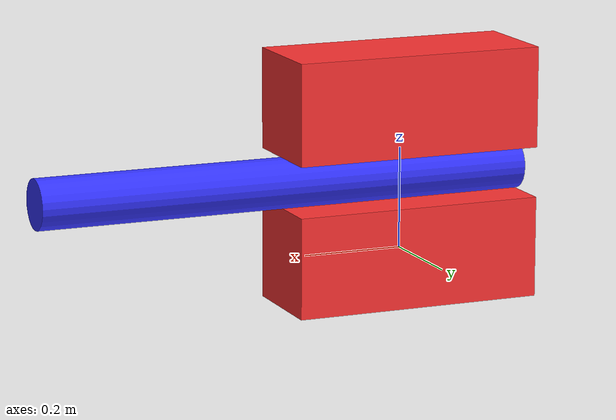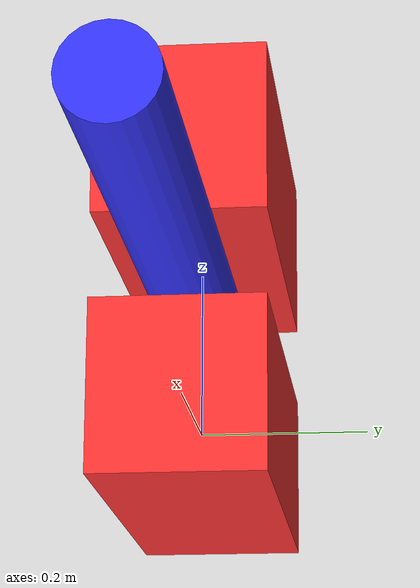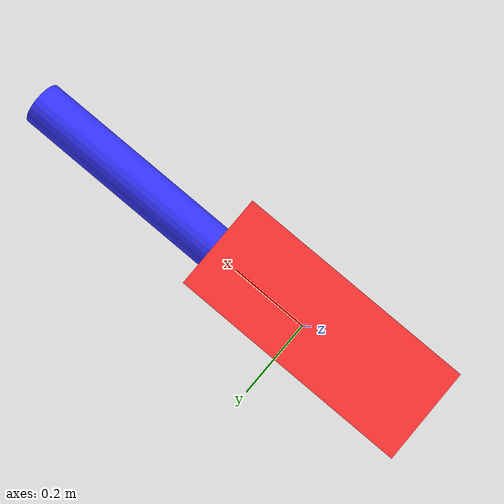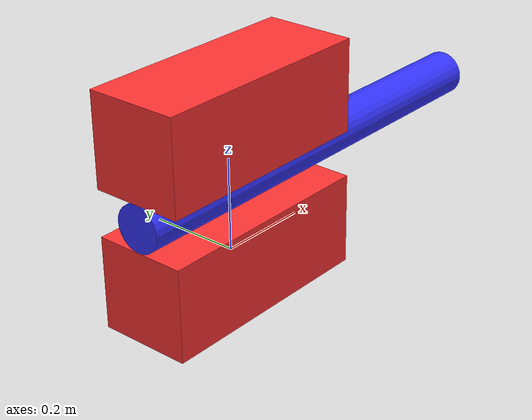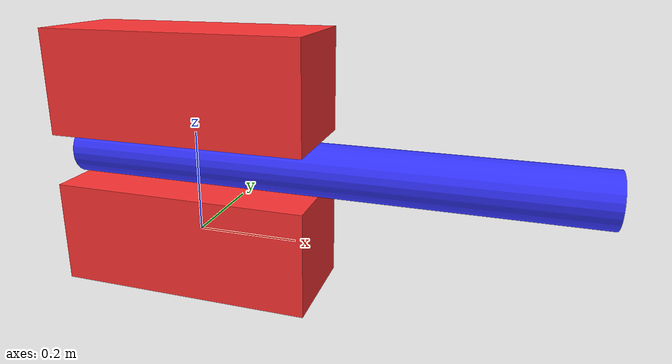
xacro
<?xml version='1.0' encoding='utf-8'?>
<robot xmlns:xacro="http://www.ros.org/wiki/xacro" name="example">
    <!-- path to package -->
    <xacro:property name="package_name" value="balegce"/>

    <xacro:property name="PI" value="3.141592653589793"/>

    <!-- Add manipulator -->
    <xacro:include filename="$(find ${package_name})/robot/visual/functions.xacro"/>

    <!-- 1 DOF prismatic -->

    <link name="link_0">
        <xacro:brickSolid mass = "1.0" origin="0 0 0" rpy="0 0 0" x="0.5" y="0.2" z="0.2" link_id="0"/>
    </link>

    <xacro:prismaticJoint id="0" curr_link="link_0" next_link="link_1" origin="0.25 0 0.15" rpy="0 ${PI/2} 0"/>
    <link name="link_1">
        <xacro:cylinderSolid mass = "1.0" origin="0 0 0" rpy="0 0 0" R="0.05" l="1.0" link_id="1"/>
    </link>

    <xacro:rigidTransform curr_link="link_0" next_link="link_2" origin="0 0 0.30" rpy="0 0 0"/>
    <link name="link_2">
        <xacro:brickSolid mass = "1.0" origin="0 0 0" rpy="0 0 0" x="0.5" y="0.2" z="0.2" link_id="2"/>
    </link>

</robot>

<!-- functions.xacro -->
<robot xmlns:xacro="http://www.ros.org/wiki/xacro">
    <xacro:macro name="worldPlan" params="mass origin rpy x y z">
        <visual>
            <origin xyz="${origin}" rpy="${rpy}"/>
            <geometry>
                <box size="${x} ${y} ${z}"/>
            </geometry>
            <material name="worldPlan">
                <color rgba="0.2 1 0.2 1"/>
            </material>
        </visual>
        <inertial>
            <origin xyz="${origin}"/>
            <mass value= "${mass}"/>
            <inertia ixx="${(1/12) * mass * (y*y+z*z)}"
                     ixy="0.0"
                     ixz="0.0"
                     iyy="${(1/12) * mass * (x*x+z*z)}"
                     iyz="0.0"
                     izz="${(1/12) * mass * (x*x+y*y)}" />
        </inertial>
        <collision>
            <origin xyz="${origin}" rpy="${rpy}"/>
            <geometry>
                <box size="${x} ${y} ${z}"/>
            </geometry>
        </collision>
    </xacro:macro>

    <xacro:macro name="base_visual" params="mass origin rpy R l">
        <visual>
            <origin xyz="${origin}" rpy="${rpy}"/>
            <geometry>
                <cylinder radius="${R}" length="${l}"/>
            </geometry>
            <material name="based_color">
                <color rgba="1 0.2 0.2 1"/>
            </material>
        </visual>
        <inertial>
            <origin xyz="${origin}"/>
            <mass value="${mass}" />
            <inertia ixx="${(1/12) * mass * (3*R*R + l*l)}"
                     ixy="0.0"
                     ixz="0.0"
                     iyy="${(1/12) * mass * (3*R*R + l*l)}"
                     iyz="0.0"
                     izz="${(1/2) * mass * (R*R)}" />
        </inertial>
        <collision>
            <origin xyz="${origin}" rpy="${rpy}"/>
            <geometry>
                <cylinder radius="${R}" length="${l}"/>
            </geometry>
        </collision>
    </xacro:macro>

    <xacro:macro name="cylinderSolid" params="mass origin rpy R l link_id">
        <visual>
            <origin xyz="${origin}" rpy="${rpy}"/>
            <geometry>
                <cylinder radius="${R}" length="${l}"/>
            </geometry>
            <material name="link_color_${link_id}">
                <color rgba="0.2 0.2 1 1"/>
            </material>
        </visual>
        <inertial>
            <origin xyz="${origin}"/>
            <mass value="${mass}" />
            <inertia ixx="${(1/12) * mass * (3*R*R + l*l)}"
                     ixy="0.0"
                     ixz="0.0"
                     iyy="${(1/12) * mass * (3*R*R + l*l)}"
                     iyz="0.0"
                     izz="${(1/2) * mass * (R*R)}" />
        </inertial>
        <collision>
            <origin xyz="${origin}" rpy="${rpy}"/>
            <geometry>
                <cylinder radius="${R}" length="${l}"/>
            </geometry>
        </collision>
    </xacro:macro>

    <xacro:macro name="brickSolid" params="mass origin rpy x y z link_id">
        <visual>
            <origin xyz="${origin}" rpy="${rpy}"/>
            <geometry>
                <box size="${x} ${y} ${z}"/>
            </geometry>
            <material name="link_color_${link_id}">
                <color rgba="1 0.2 0.2 1"/>
            </material>
        </visual>
        <inertial>
            <origin xyz="${origin}"/>
            <mass value= "${mass}"/>
            <inertia ixx="${(1/12) * mass * (y*y+z*z)}"
                     ixy="0.0"
                     ixz="0.0"
                     iyy="${(1/12) * mass * (x*x+z*z)}"
                     iyz="0.0"
                     izz="${(1/12) * mass * (x*x+y*y)}" />
        </inertial>
        <collision>
            <origin xyz="${origin}" rpy="${rpy}"/>
            <geometry>
                <box size="${x} ${y} ${z}"/>
            </geometry>
        </collision>
    </xacro:macro>

    <xacro:macro name="rigidTransform" params="curr_link next_link origin rpy">
        <joint name="rigidTransform_${curr_link}_to_${next_link}" type="fixed">
            <origin xyz="${origin}" rpy="${rpy}"/>
            <parent link="${curr_link}"/>
            <child link="${next_link}"/>
        </joint>
    </xacro:macro>

    <xacro:macro name="revoluteJoint" params="id curr_link next_link origin rpy">
        <joint name="revoluteJoint_${id}" type="revolute">
            <origin xyz="${origin}" rpy="${rpy}"/>
            <parent link="${curr_link}"/>
            <child link="${next_link}"/>
            <axis xyz="0 0 1"/>
            <limit
                lower="-3.14152"
                upper="3.14152"
                velocity="1000.0"
                effort="1000.0"/>
        </joint>
    </xacro:macro>

    <xacro:macro name="prismaticJoint" params="id curr_link next_link origin rpy">
        <joint name="prismaticJoint_${id}" type="prismatic">
            <origin xyz="${origin}" rpy="${rpy}"/>
            <parent link="${curr_link}"/>
            <child link="${next_link}"/>
            <axis xyz="0 0 1"/>
            <limit
                lower="-0.5"
                upper="0.5"
                velocity="1000.0"
                effort="1000.0"/>
        </joint>
    </xacro:macro>
</robot>
